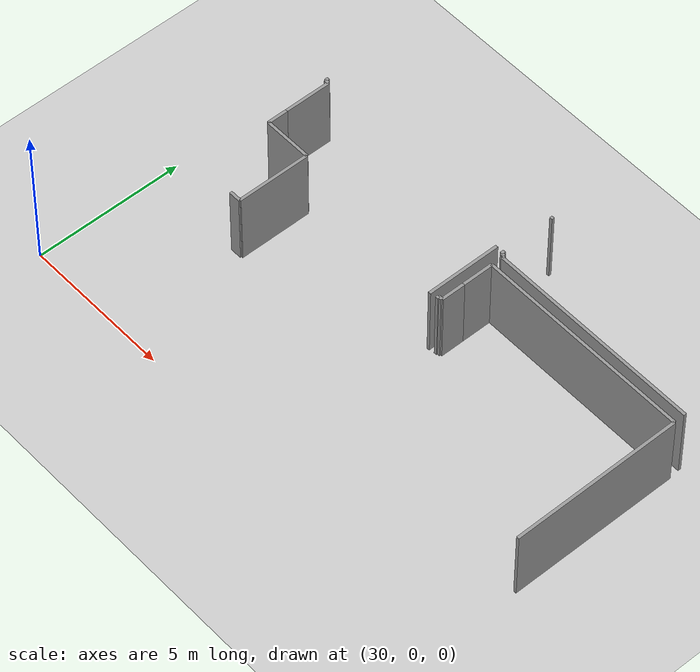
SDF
<sdf version="1.6">
 <world name="default">
  <model name="ground_plane">
   <static>1</static>
   <link name="link">
    <collision name="collision">
     <geometry><plane><normal>0 0 1</normal><size>100 100</size></plane></geometry>
     <surface><friction><ode><mu>100</mu><mu2>50</mu2></ode></friction></surface>
    </collision>
    <visual name="visual">
     <cast_shadows>0</cast_shadows>
     <geometry><plane><normal>0 0 1</normal><size>100 100</size></plane></geometry>
     <material>
      <script><uri>file://media/materials/scripts/gazebo.material</uri><name>Gazebo/Grey</name></script>
     </material>
    </visual>
   </link>
  </model>
  <model name="0510032267_A_40_1_101">
   <static>1</static>
   <link name="Wall_471">
    <collision name="Wall_471_Collision">
     <geometry><box><size>1.57212842882 0.1 2.5</size></box></geometry>
     <pose>0.786064214412 0 1.25 0 0 0</pose>
    </collision>
    <visual name="Wall_471_Visual">
     <pose>0.786064214412 0 1.25 0 0 0</pose>
     <geometry><box><size>1.57212842882 0.1 2.5</size></box></geometry>
     <material>
      <script><uri>file://media/materials/scripts/gazebo.material</uri><name>Gazebo/Grey</name></script>
      <ambient>1 1 1 1</ambient>
     </material>
    </visual>
    <pose>79.9504381144 -26.3226987082 0 0 0 1.57079632679</pose>
   </link>
   <link name="Wall_472">
    <collision name="Wall_472_Collision">
     <geometry><box><size>0.132165028371 0.1 2.5</size></box></geometry>
     <pose>0.0660825141855 0 1.25 0 0 0</pose>
    </collision>
    <visual name="Wall_472_Visual">
     <pose>0.0660825141855 0 1.25 0 0 0</pose>
     <geometry><box><size>0.132165028371 0.1 2.5</size></box></geometry>
     <material>
      <script><uri>file://media/materials/scripts/gazebo.material</uri><name>Gazebo/Grey</name></script>
      <ambient>1 1 1 1</ambient>
     </material>
    </visual>
    <pose>79.9504381144 -24.7505702794 0 0 0 3.14159265359</pose>
   </link>
   <link name="Wall_473">
    <collision name="Wall_473_Collision">
     <geometry><box><size>0.109925720712 0.1 2.5</size></box></geometry>
     <pose>0.0549628603562 0 1.25 0 0 0</pose>
    </collision>
    <visual name="Wall_473_Visual">
     <pose>0.0549628603562 0 1.25 0 0 0</pose>
     <geometry><box><size>0.109925720712 0.1 2.5</size></box></geometry>
     <material>
      <script><uri>file://media/materials/scripts/gazebo.material</uri><name>Gazebo/Grey</name></script>
      <ambient>1 1 1 1</ambient>
     </material>
    </visual>
    <pose>79.818273086 -24.7505702794 0 0 0 1.57079632679</pose>
   </link>
   <link name="Wall_479">
    <collision name="Wall_479_Collision">
     <geometry><box><size>2.50122316192 0.1 2.5</size></box></geometry>
     <pose>1.25061158096 0 1.25 0 0 0</pose>
    </collision>
    <visual name="Wall_479_Visual">
     <pose>1.25061158096 0 1.25 0 0 0</pose>
     <geometry><box><size>2.50122316192 0.1 2.5</size></box></geometry>
     <material>
      <script><uri>file://media/materials/scripts/gazebo.material</uri><name>Gazebo/Grey</name></script>
      <ambient>1 1 1 1</ambient>
     </material>
    </visual>
    <pose>87.5105319007 -25.2092083442 0 0 0 -1.57079632679</pose>
   </link>
   <link name="Wall_484">
    <collision name="Wall_484_Collision">
     <geometry><box><size>0.393063877646 0.1 2.5</size></box></geometry>
     <pose>0.196531938823 0 1.25 0 0 0</pose>
    </collision>
    <visual name="Wall_484_Visual">
     <pose>0.196531938823 0 1.25 0 0 0</pose>
     <geometry><box><size>0.393063877646 0.1 2.5</size></box></geometry>
     <material>
      <script><uri>file://media/materials/scripts/gazebo.material</uri><name>Gazebo/Grey</name></script>
      <ambient>1 1 1 1</ambient>
     </material>
    </visual>
    <pose>81.1943143621 -29.4480203839 0 0 0 0.0</pose>
   </link>
   <link name="Wall_485">
    <collision name="Wall_485_Collision">
     <geometry><box><size>2.45687162836 0.1 2.5</size></box></geometry>
     <pose>1.22843581418 0 1.25 0 0 0</pose>
    </collision>
    <visual name="Wall_485_Visual">
     <pose>1.22843581418 0 1.25 0 0 0</pose>
     <geometry><box><size>2.45687162836 0.1 2.5</size></box></geometry>
     <material>
      <script><uri>file://media/materials/scripts/gazebo.material</uri><name>Gazebo/Grey</name></script>
      <ambient>1 1 1 1</ambient>
     </material>
    </visual>
    <pose>81.5873782398 -29.4480203839 0 0 0 1.57079632679</pose>
   </link>
   <link name="Wall_486">
    <collision name="Wall_486_Collision">
     <geometry><box><size>1.63655888016 0.1 2.5</size></box></geometry>
     <pose>0.818279440078 0 1.25 0 0 0</pose>
    </collision>
    <visual name="Wall_486_Visual">
     <pose>0.818279440078 0 1.25 0 0 0</pose>
     <geometry><box><size>1.63655888016 0.1 2.5</size></box></geometry>
     <material>
      <script><uri>file://media/materials/scripts/gazebo.material</uri><name>Gazebo/Grey</name></script>
      <ambient>1 1 1 1</ambient>
     </material>
    </visual>
    <pose>81.5873782398 -26.9911487556 0 0 0 3.14159265359</pose>
   </link>
   <link name="Wall_487">
    <collision name="Wall_487_Collision">
     <geometry><box><size>0.668450156058 0.1 2.5</size></box></geometry>
     <pose>0.334225078029 0 1.25 0 0 0</pose>
    </collision>
    <visual name="Wall_487_Visual">
     <pose>0.334225078029 0 1.25 0 0 0</pose>
     <geometry><box><size>0.668450156058 0.1 2.5</size></box></geometry>
     <material>
      <script><uri>file://media/materials/scripts/gazebo.material</uri><name>Gazebo/Grey</name></script>
      <ambient>1 1 1 1</ambient>
     </material>
    </visual>
    <pose>79.9508193596 -26.9911487556 0 0 0 1.57136666894</pose>
   </link>
   <link name="Wall_491">
    <collision name="Wall_491_Collision">
     <geometry><box><size>7.1860921724 0.1 2.5</size></box></geometry>
     <pose>3.5930460862 0 1.25 0 0 0</pose>
    </collision>
    <visual name="Wall_491_Visual">
     <pose>3.5930460862 0 1.25 0 0 0</pose>
     <geometry><box><size>7.1860921724 0.1 2.5</size></box></geometry>
     <material>
      <script><uri>file://media/materials/scripts/gazebo.material</uri><name>Gazebo/Grey</name></script>
      <ambient>1 1 1 1</ambient>
     </material>
    </visual>
    <pose>95.0854942527 -25.3683147053 0 0 0 3.14159265359</pose>
   </link>
   <link name="Wall_492">
    <collision name="Wall_492_Collision">
     <geometry><box><size>0.0765032183455 0.1 2.5</size></box></geometry>
     <pose>0.0382516091728 0 1.25 0 0 0</pose>
    </collision>
    <visual name="Wall_492_Visual">
     <pose>0.0382516091728 0 1.25 0 0 0</pose>
     <geometry><box><size>0.0765032183455 0.1 2.5</size></box></geometry>
     <material>
      <script><uri>file://media/materials/scripts/gazebo.material</uri><name>Gazebo/Grey</name></script>
      <ambient>1 1 1 1</ambient>
     </material>
    </visual>
    <pose>87.8994020803 -25.3683147053 0 0 0 1.57079632679</pose>
   </link>
   <link name="Wall_493">
    <collision name="Wall_493_Collision">
     <geometry><box><size>0.124540122888 0.1 2.5</size></box></geometry>
     <pose>0.062270061444 0 1.25 0 0 0</pose>
    </collision>
    <visual name="Wall_493_Visual">
     <pose>0.062270061444 0 1.25 0 0 0</pose>
     <geometry><box><size>0.124540122888 0.1 2.5</size></box></geometry>
     <material>
      <script><uri>file://media/materials/scripts/gazebo.material</uri><name>Gazebo/Grey</name></script>
      <ambient>1 1 1 1</ambient>
     </material>
    </visual>
    <pose>87.8994020803 -25.2918114869 0 0 0 3.14159265359</pose>
   </link>
   <link name="Wall_494">
    <collision name="Wall_494_Collision">
     <geometry><box><size>0.12047350663 0.1 2.5</size></box></geometry>
     <pose>0.0602367533152 0 1.25 0 0 0</pose>
    </collision>
    <visual name="Wall_494_Visual">
     <pose>0.0602367533152 0 1.25 0 0 0</pose>
     <geometry><box><size>0.12047350663 0.1 2.5</size></box></geometry>
     <material>
      <script><uri>file://media/materials/scripts/gazebo.material</uri><name>Gazebo/Grey</name></script>
      <ambient>1 1 1 1</ambient>
     </material>
    </visual>
    <pose>87.7748619574 -25.2918114869 0 0 0 1.57079632679</pose>
   </link>
   <link name="Wall_495">
    <collision name="Wall_495_Collision">
     <geometry><box><size>0.0903551299729 0.1 2.5</size></box></geometry>
     <pose>0.0451775649864 0 1.25 0 0 0</pose>
    </collision>
    <visual name="Wall_495_Visual">
     <pose>0.0451775649864 0 1.25 0 0 0</pose>
     <geometry><box><size>0.0903551299729 0.1 2.5</size></box></geometry>
     <material>
      <script><uri>file://media/materials/scripts/gazebo.material</uri><name>Gazebo/Grey</name></script>
      <ambient>1 1 1 1</ambient>
     </material>
    </visual>
    <pose>87.7748619574 -23.429809568 0 0 0 1.57079632679</pose>
   </link>
   <link name="Wall_498">
    <collision name="Wall_498_Collision">
     <geometry><box><size>1.04257874303 0.1 2.5</size></box></geometry>
     <pose>0.521289371517 0 1.25 0 0 0</pose>
    </collision>
    <visual name="Wall_498_Visual">
     <pose>0.521289371517 0 1.25 0 0 0</pose>
     <geometry><box><size>1.04257874303 0.1 2.5</size></box></geometry>
     <material>
      <script><uri>file://media/materials/scripts/gazebo.material</uri><name>Gazebo/Grey</name></script>
      <ambient>1 1 1 1</ambient>
     </material>
    </visual>
    <pose>87.8959708729 -26.7987469739 0 0 0 1.57079632679</pose>
   </link>
   <link name="Wall_499">
    <collision name="Wall_499_Collision">
     <geometry><box><size>7.1821526379 0.1 2.5</size></box></geometry>
     <pose>3.59107631895 0 1.25 0 0 0</pose>
    </collision>
    <visual name="Wall_499_Visual">
     <pose>3.59107631895 0 1.25 0 0 0</pose>
     <geometry><box><size>7.1821526379 0.1 2.5</size></box></geometry>
     <material>
      <script><uri>file://media/materials/scripts/gazebo.material</uri><name>Gazebo/Grey</name></script>
      <ambient>1 1 1 1</ambient>
     </material>
    </visual>
    <pose>87.8959708729 -25.7561682308 0 0 0 0.0</pose>
   </link>
   <link name="Wall_500">
    <collision name="Wall_500_Collision">
     <geometry><box><size>5.68169832061 0.1 2.5</size></box></geometry>
     <pose>2.84084916031 0 1.25 0 0 0</pose>
    </collision>
    <visual name="Wall_500_Visual">
     <pose>2.84084916031 0 1.25 0 0 0</pose>
     <geometry><box><size>5.68169832061 0.1 2.5</size></box></geometry>
     <material>
      <script><uri>file://media/materials/scripts/gazebo.material</uri><name>Gazebo/Grey</name></script>
      <ambient>1 1 1 1</ambient>
     </material>
    </visual>
    <pose>95.0781235108 -25.7561682308 0 0 0 -1.57079632679</pose>
   </link>
   <link name="Wall_506">
    <collision name="Wall_506_Collision">
     <geometry><box><size>0.0831114697641 0.1 2.5</size></box></geometry>
     <pose>0.041555734882 0 1.25 0 0 0</pose>
    </collision>
    <visual name="Wall_506_Visual">
     <pose>0.041555734882 0 1.25 0 0 0</pose>
     <geometry><box><size>0.0831114697641 0.1 2.5</size></box></geometry>
     <material>
      <script><uri>file://media/materials/scripts/gazebo.material</uri><name>Gazebo/Grey</name></script>
      <ambient>1 1 1 1</ambient>
     </material>
    </visual>
    <pose>87.7617725364 -27.6723069787 0 0 0 1.57079632679</pose>
   </link>
   <link name="Wall_507">
    <collision name="Wall_507_Collision">
     <geometry><box><size>0.13356292771 0.1 2.5</size></box></geometry>
     <pose>0.0667814638548 0 1.25 0 0 0</pose>
    </collision>
    <visual name="Wall_507_Visual">
     <pose>0.0667814638548 0 1.25 0 0 0</pose>
     <geometry><box><size>0.13356292771 0.1 2.5</size></box></geometry>
     <material>
      <script><uri>file://media/materials/scripts/gazebo.material</uri><name>Gazebo/Grey</name></script>
      <ambient>1 1 1 1</ambient>
     </material>
    </visual>
    <pose>87.7617725364 -27.5891955089 0 0 0 0.0</pose>
   </link>
   <link name="Wall_508">
    <collision name="Wall_508_Collision">
     <geometry><box><size>0.790448790454 0.1 2.5</size></box></geometry>
     <pose>0.395224395227 0 1.25 0 0 0</pose>
    </collision>
    <visual name="Wall_508_Visual">
     <pose>0.395224395227 0 1.25 0 0 0</pose>
     <geometry><box><size>0.790448790454 0.1 2.5</size></box></geometry>
     <material>
      <script><uri>file://media/materials/scripts/gazebo.material</uri><name>Gazebo/Grey</name></script>
      <ambient>1 1 1 1</ambient>
     </material>
    </visual>
    <pose>87.8953354641 -27.5891955089 0 0 0 1.56999246845</pose>
   </link>
   <pose>-47.8 33.6752466975 0 0 0 0</pose>
  </model>
 </world>
</sdf>
